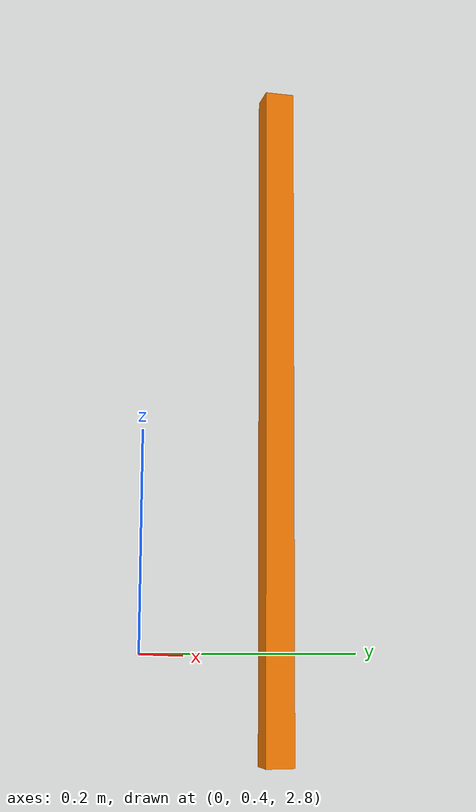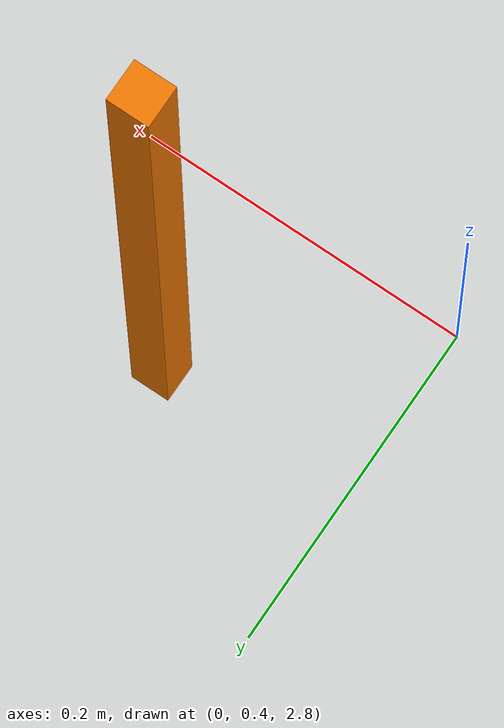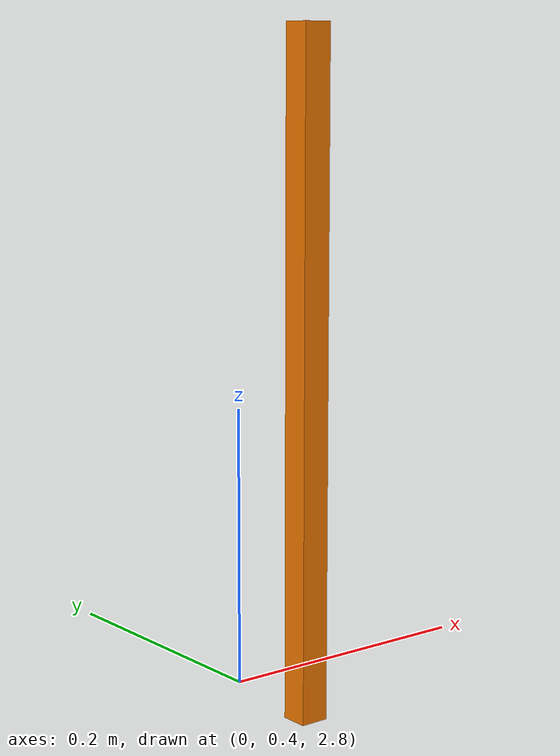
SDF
<?xml version="1.0" ?>
<sdf version="1.5">
  <model name="side_gate">
    <static>true</static>
    <link name='link'>
      <collision name="collision">
        <geometry>
          <mesh>
            <uri>model://side_gate/meshes/side_gate.dae</uri>
            <scale>1 1 1</scale>
          </mesh>
        </geometry>
        <surface>
          <contact>
            <collide_bitmask>0xffff</collide_bitmask>
          </contact>
          <friction>
            <ode>
              <mu>100</mu>
              <mu2>50</mu2>
            </ode>
          </friction>
        </surface>
      </collision>
      <visual name='visual'>
        <geometry>
          <mesh>
            <uri>model://side_gate/meshes/side_gate.dae</uri>
            <scale>1 1 1</scale>
          </mesh>
        </geometry>
      </visual>
    </link>
  </model>
</sdf>
